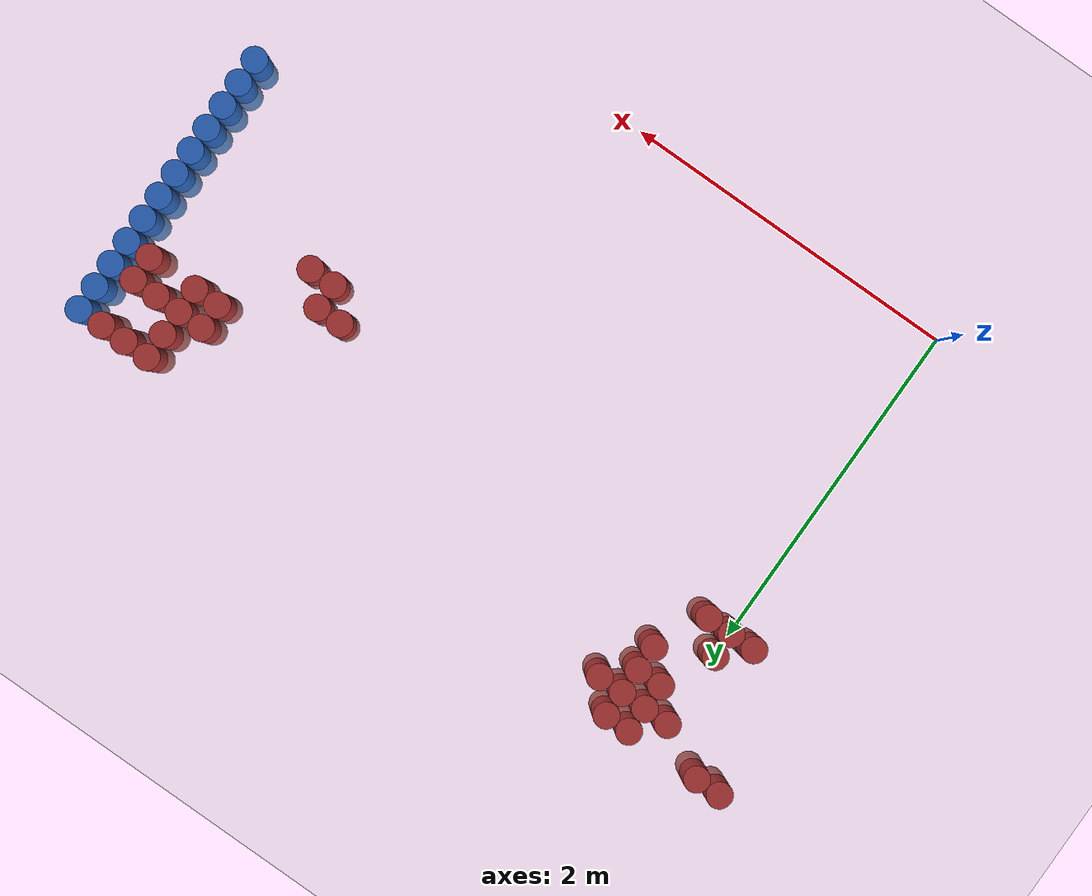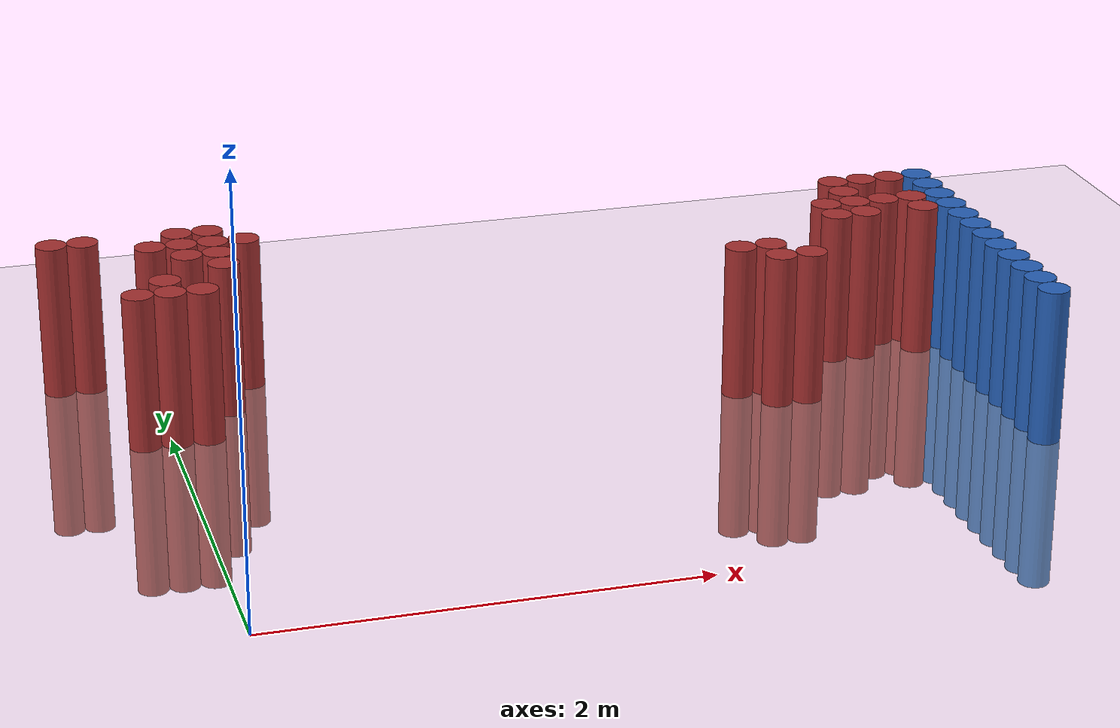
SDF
<sdf version="1.6">
 <world name="default">
  <model name="ground_plane">
   <static>1</static>
   <link name="link">
    <collision name="collision">
     <geometry><plane><normal>0 0 1</normal><size>100 100</size></plane></geometry>
     <surface><friction><ode><mu>100</mu><mu2>50</mu2></ode></friction></surface>
    </collision>
    <visual name="visual">
     <cast_shadows>0</cast_shadows>
     <geometry><plane><normal>0 0 1</normal><size>100 100</size></plane></geometry>
     <material>
      <script><uri>file://media/materials/scripts/gazebo.material</uri><name>Gazebo/Grey</name></script>
     </material>
    </visual>
   </link>
  </model>
  <model name="unit_cylinder_128">
   <static>1</static>
   <pose>3.925000 1.075000 0.000000 0.000000 0.000000 0.000000</pose>
   <link name="link">
    <inertial>
     <mass>1</mass>
     <inertia><ixx>0.145833</ixx><ixy>0</ixy><ixz>0</ixz><iyy>0.145833</iyy><iyz>0</iyz><izz>0.125</izz></inertia>
    </inertial>
    <collision name="collision">
     <geometry><cylinder><radius>0.075000</radius><length>1.5</length></cylinder></geometry>
    </collision>
    <visual name="visual">
     <geometry><cylinder><radius>0.075000</radius><length>1.5</length></cylinder></geometry>
     <material>
      <ambient>0.152000 0.379000 0.720000 1</ambient>
      <diffuse>0.152000 0.379000 0.720000 1</diffuse>
     </material>
     <material>
      <script><name>Gazebo/Grey</name><uri>file://media/materials/scripts/gazebo.material</uri></script>
     </material>
    </visual>
   </link>
  </model>
  <model name="unit_cylinder_130">
   <static>1</static>
   <pose>3.925000 1.225000 0.000000 0.000000 0.000000 0.000000</pose>
   <link name="link">
    <inertial>
     <mass>1</mass>
     <inertia><ixx>0.145833</ixx><ixy>0</ixy><ixz>0</ixz><iyy>0.145833</iyy><iyz>0</iyz><izz>0.125</izz></inertia>
    </inertial>
    <collision name="collision">
     <geometry><cylinder><radius>0.075000</radius><length>1.5</length></cylinder></geometry>
    </collision>
    <visual name="visual">
     <geometry><cylinder><radius>0.075000</radius><length>1.5</length></cylinder></geometry>
     <material>
      <ambient>0.152000 0.379000 0.720000 1</ambient>
      <diffuse>0.152000 0.379000 0.720000 1</diffuse>
     </material>
     <material>
      <script><name>Gazebo/Grey</name><uri>file://media/materials/scripts/gazebo.material</uri></script>
     </material>
    </visual>
   </link>
  </model>
  <model name="unit_cylinder_132">
   <static>1</static>
   <pose>3.925000 1.375000 0.000000 0.000000 0.000000 0.000000</pose>
   <link name="link">
    <inertial>
     <mass>1</mass>
     <inertia><ixx>0.145833</ixx><ixy>0</ixy><ixz>0</ixz><iyy>0.145833</iyy><iyz>0</iyz><izz>0.125</izz></inertia>
    </inertial>
    <collision name="collision">
     <geometry><cylinder><radius>0.075000</radius><length>1.5</length></cylinder></geometry>
    </collision>
    <visual name="visual">
     <geometry><cylinder><radius>0.075000</radius><length>1.5</length></cylinder></geometry>
     <material>
      <ambient>0.152000 0.379000 0.720000 1</ambient>
      <diffuse>0.152000 0.379000 0.720000 1</diffuse>
     </material>
     <material>
      <script><name>Gazebo/Grey</name><uri>file://media/materials/scripts/gazebo.material</uri></script>
     </material>
    </visual>
   </link>
  </model>
  <model name="unit_cylinder_134">
   <static>1</static>
   <pose>3.925000 1.525000 0.000000 0.000000 0.000000 0.000000</pose>
   <link name="link">
    <inertial>
     <mass>1</mass>
     <inertia><ixx>0.145833</ixx><ixy>0</ixy><ixz>0</ixz><iyy>0.145833</iyy><iyz>0</iyz><izz>0.125</izz></inertia>
    </inertial>
    <collision name="collision">
     <geometry><cylinder><radius>0.075000</radius><length>1.5</length></cylinder></geometry>
    </collision>
    <visual name="visual">
     <geometry><cylinder><radius>0.075000</radius><length>1.5</length></cylinder></geometry>
     <material>
      <ambient>0.152000 0.379000 0.720000 1</ambient>
      <diffuse>0.152000 0.379000 0.720000 1</diffuse>
     </material>
     <material>
      <script><name>Gazebo/Grey</name><uri>file://media/materials/scripts/gazebo.material</uri></script>
     </material>
    </visual>
   </link>
  </model>
  <model name="unit_cylinder_136">
   <static>1</static>
   <pose>3.925000 1.675000 0.000000 0.000000 0.000000 0.000000</pose>
   <link name="link">
    <inertial>
     <mass>1</mass>
     <inertia><ixx>0.145833</ixx><ixy>0</ixy><ixz>0</ixz><iyy>0.145833</iyy><iyz>0</iyz><izz>0.125</izz></inertia>
    </inertial>
    <collision name="collision">
     <geometry><cylinder><radius>0.075000</radius><length>1.5</length></cylinder></geometry>
    </collision>
    <visual name="visual">
     <geometry><cylinder><radius>0.075000</radius><length>1.5</length></cylinder></geometry>
     <material>
      <ambient>0.152000 0.379000 0.720000 1</ambient>
      <diffuse>0.152000 0.379000 0.720000 1</diffuse>
     </material>
     <material>
      <script><name>Gazebo/Grey</name><uri>file://media/materials/scripts/gazebo.material</uri></script>
     </material>
    </visual>
   </link>
  </model>
  <model name="unit_cylinder_138">
   <static>1</static>
   <pose>3.925000 1.825000 0.000000 0.000000 0.000000 0.000000</pose>
   <link name="link">
    <inertial>
     <mass>1</mass>
     <inertia><ixx>0.145833</ixx><ixy>0</ixy><ixz>0</ixz><iyy>0.145833</iyy><iyz>0</iyz><izz>0.125</izz></inertia>
    </inertial>
    <collision name="collision">
     <geometry><cylinder><radius>0.075000</radius><length>1.5</length></cylinder></geometry>
    </collision>
    <visual name="visual">
     <geometry><cylinder><radius>0.075000</radius><length>1.5</length></cylinder></geometry>
     <material>
      <ambient>0.152000 0.379000 0.720000 1</ambient>
      <diffuse>0.152000 0.379000 0.720000 1</diffuse>
     </material>
     <material>
      <script><name>Gazebo/Grey</name><uri>file://media/materials/scripts/gazebo.material</uri></script>
     </material>
    </visual>
   </link>
  </model>
  <model name="unit_cylinder_140">
   <static>1</static>
   <pose>3.925000 1.975000 0.000000 0.000000 0.000000 0.000000</pose>
   <link name="link">
    <inertial>
     <mass>1</mass>
     <inertia><ixx>0.145833</ixx><ixy>0</ixy><ixz>0</ixz><iyy>0.145833</iyy><iyz>0</iyz><izz>0.125</izz></inertia>
    </inertial>
    <collision name="collision">
     <geometry><cylinder><radius>0.075000</radius><length>1.5</length></cylinder></geometry>
    </collision>
    <visual name="visual">
     <geometry><cylinder><radius>0.075000</radius><length>1.5</length></cylinder></geometry>
     <material>
      <ambient>0.152000 0.379000 0.720000 1</ambient>
      <diffuse>0.152000 0.379000 0.720000 1</diffuse>
     </material>
     <material>
      <script><name>Gazebo/Grey</name><uri>file://media/materials/scripts/gazebo.material</uri></script>
     </material>
    </visual>
   </link>
  </model>
  <model name="unit_cylinder_142">
   <static>1</static>
   <pose>3.925000 2.125000 0.000000 0.000000 0.000000 0.000000</pose>
   <link name="link">
    <inertial>
     <mass>1</mass>
     <inertia><ixx>0.145833</ixx><ixy>0</ixy><ixz>0</ixz><iyy>0.145833</iyy><iyz>0</iyz><izz>0.125</izz></inertia>
    </inertial>
    <collision name="collision">
     <geometry><cylinder><radius>0.075000</radius><length>1.5</length></cylinder></geometry>
    </collision>
    <visual name="visual">
     <geometry><cylinder><radius>0.075000</radius><length>1.5</length></cylinder></geometry>
     <material>
      <ambient>0.152000 0.379000 0.720000 1</ambient>
      <diffuse>0.152000 0.379000 0.720000 1</diffuse>
     </material>
     <material>
      <script><name>Gazebo/Grey</name><uri>file://media/materials/scripts/gazebo.material</uri></script>
     </material>
    </visual>
   </link>
  </model>
  <model name="unit_cylinder_144">
   <static>1</static>
   <pose>3.925000 2.275000 0.000000 0.000000 0.000000 0.000000</pose>
   <link name="link">
    <inertial>
     <mass>1</mass>
     <inertia><ixx>0.145833</ixx><ixy>0</ixy><ixz>0</ixz><iyy>0.145833</iyy><iyz>0</iyz><izz>0.125</izz></inertia>
    </inertial>
    <collision name="collision">
     <geometry><cylinder><radius>0.075000</radius><length>1.5</length></cylinder></geometry>
    </collision>
    <visual name="visual">
     <geometry><cylinder><radius>0.075000</radius><length>1.5</length></cylinder></geometry>
     <material>
      <ambient>0.152000 0.379000 0.720000 1</ambient>
      <diffuse>0.152000 0.379000 0.720000 1</diffuse>
     </material>
     <material>
      <script><name>Gazebo/Grey</name><uri>file://media/materials/scripts/gazebo.material</uri></script>
     </material>
    </visual>
   </link>
  </model>
  <model name="unit_cylinder_146">
   <static>1</static>
   <pose>3.925000 2.425000 0.000000 0.000000 0.000000 0.000000</pose>
   <link name="link">
    <inertial>
     <mass>1</mass>
     <inertia><ixx>0.145833</ixx><ixy>0</ixy><ixz>0</ixz><iyy>0.145833</iyy><iyz>0</iyz><izz>0.125</izz></inertia>
    </inertial>
    <collision name="collision">
     <geometry><cylinder><radius>0.075000</radius><length>1.5</length></cylinder></geometry>
    </collision>
    <visual name="visual">
     <geometry><cylinder><radius>0.075000</radius><length>1.5</length></cylinder></geometry>
     <material>
      <ambient>0.152000 0.379000 0.720000 1</ambient>
      <diffuse>0.152000 0.379000 0.720000 1</diffuse>
     </material>
     <material>
      <script><name>Gazebo/Grey</name><uri>file://media/materials/scripts/gazebo.material</uri></script>
     </material>
    </visual>
   </link>
  </model>
  <model name="unit_cylinder_148">
   <static>1</static>
   <pose>3.925000 2.575000 0.000000 0.000000 0.000000 0.000000</pose>
   <link name="link">
    <inertial>
     <mass>1</mass>
     <inertia><ixx>0.145833</ixx><ixy>0</ixy><ixz>0</ixz><iyy>0.145833</iyy><iyz>0</iyz><izz>0.125</izz></inertia>
    </inertial>
    <collision name="collision">
     <geometry><cylinder><radius>0.075000</radius><length>1.5</length></cylinder></geometry>
    </collision>
    <visual name="visual">
     <geometry><cylinder><radius>0.075000</radius><length>1.5</length></cylinder></geometry>
     <material>
      <ambient>0.152000 0.379000 0.720000 1</ambient>
      <diffuse>0.152000 0.379000 0.720000 1</diffuse>
     </material>
     <material>
      <script><name>Gazebo/Grey</name><uri>file://media/materials/scripts/gazebo.material</uri></script>
     </material>
    </visual>
   </link>
  </model>
  <model name="unit_cylinder_330">
   <static>1</static>
   <pose>-0.425000 2.725000 0.000000 0.000000 0.000000 0.000000</pose>
   <link name="link">
    <inertial>
     <mass>1</mass>
     <inertia><ixx>0.145833</ixx><ixy>0</ixy><ixz>0</ixz><iyy>0.145833</iyy><iyz>0</iyz><izz>0.125</izz></inertia>
    </inertial>
    <collision name="collision">
     <geometry><cylinder><radius>0.075000</radius><length>1.5</length></cylinder></geometry>
    </collision>
    <visual name="visual">
     <geometry><cylinder><radius>0.075000</radius><length>1.5</length></cylinder></geometry>
     <material>
      <ambient>0.648000 0.192000 0.192000 1</ambient>
      <diffuse>0.648000 0.192000 0.192000 1</diffuse>
     </material>
     <material>
      <script><name>Gazebo/Grey</name><uri>file://media/materials/scripts/gazebo.material</uri></script>
     </material>
    </visual>
   </link>
  </model>
  <model name="unit_cylinder_333">
   <static>1</static>
   <pose>-0.275000 2.725000 0.000000 0.000000 0.000000 0.000000</pose>
   <link name="link">
    <inertial>
     <mass>1</mass>
     <inertia><ixx>0.145833</ixx><ixy>0</ixy><ixz>0</ixz><iyy>0.145833</iyy><iyz>0</iyz><izz>0.125</izz></inertia>
    </inertial>
    <collision name="collision">
     <geometry><cylinder><radius>0.075000</radius><length>1.5</length></cylinder></geometry>
    </collision>
    <visual name="visual">
     <geometry><cylinder><radius>0.075000</radius><length>1.5</length></cylinder></geometry>
     <material>
      <ambient>0.648000 0.192000 0.192000 1</ambient>
      <diffuse>0.648000 0.192000 0.192000 1</diffuse>
     </material>
     <material>
      <script><name>Gazebo/Grey</name><uri>file://media/materials/scripts/gazebo.material</uri></script>
     </material>
    </visual>
   </link>
  </model>
  <model name="unit_cylinder_337">
   <static>1</static>
   <pose>-0.125000 1.975000 0.000000 0.000000 0.000000 0.000000</pose>
   <link name="link">
    <inertial>
     <mass>1</mass>
     <inertia><ixx>0.145833</ixx><ixy>0</ixy><ixz>0</ixz><iyy>0.145833</iyy><iyz>0</iyz><izz>0.125</izz></inertia>
    </inertial>
    <collision name="collision">
     <geometry><cylinder><radius>0.075000</radius><length>1.5</length></cylinder></geometry>
    </collision>
    <visual name="visual">
     <geometry><cylinder><radius>0.075000</radius><length>1.5</length></cylinder></geometry>
     <material>
      <ambient>0.648000 0.192000 0.192000 1</ambient>
      <diffuse>0.648000 0.192000 0.192000 1</diffuse>
     </material>
     <material>
      <script><name>Gazebo/Grey</name><uri>file://media/materials/scripts/gazebo.material</uri></script>
     </material>
    </visual>
   </link>
  </model>
  <model name="unit_cylinder_342">
   <static>1</static>
   <pose>0.025000 1.975000 0.000000 0.000000 0.000000 0.000000</pose>
   <link name="link">
    <inertial>
     <mass>1</mass>
     <inertia><ixx>0.145833</ixx><ixy>0</ixy><ixz>0</ixz><iyy>0.145833</iyy><iyz>0</iyz><izz>0.125</izz></inertia>
    </inertial>
    <collision name="collision">
     <geometry><cylinder><radius>0.075000</radius><length>1.5</length></cylinder></geometry>
    </collision>
    <visual name="visual">
     <geometry><cylinder><radius>0.075000</radius><length>1.5</length></cylinder></geometry>
     <material>
      <ambient>0.648000 0.192000 0.192000 1</ambient>
      <diffuse>0.648000 0.192000 0.192000 1</diffuse>
     </material>
     <material>
      <script><name>Gazebo/Grey</name><uri>file://media/materials/scripts/gazebo.material</uri></script>
     </material>
    </visual>
   </link>
  </model>
  <model name="unit_cylinder_343">
   <static>1</static>
   <pose>0.025000 2.125000 0.000000 0.000000 0.000000 0.000000</pose>
   <link name="link">
    <inertial>
     <mass>1</mass>
     <inertia><ixx>0.145833</ixx><ixy>0</ixy><ixz>0</ixz><iyy>0.145833</iyy><iyz>0</iyz><izz>0.125</izz></inertia>
    </inertial>
    <collision name="collision">
     <geometry><cylinder><radius>0.075000</radius><length>1.5</length></cylinder></geometry>
    </collision>
    <visual name="visual">
     <geometry><cylinder><radius>0.075000</radius><length>1.5</length></cylinder></geometry>
     <material>
      <ambient>0.648000 0.192000 0.192000 1</ambient>
      <diffuse>0.648000 0.192000 0.192000 1</diffuse>
     </material>
     <material>
      <script><name>Gazebo/Grey</name><uri>file://media/materials/scripts/gazebo.material</uri></script>
     </material>
    </visual>
   </link>
  </model>
  <model name="unit_cylinder_344">
   <static>1</static>
   <pose>0.025000 2.575000 0.000000 0.000000 0.000000 0.000000</pose>
   <link name="link">
    <inertial>
     <mass>1</mass>
     <inertia><ixx>0.145833</ixx><ixy>0</ixy><ixz>0</ixz><iyy>0.145833</iyy><iyz>0</iyz><izz>0.125</izz></inertia>
    </inertial>
    <collision name="collision">
     <geometry><cylinder><radius>0.075000</radius><length>1.5</length></cylinder></geometry>
    </collision>
    <visual name="visual">
     <geometry><cylinder><radius>0.075000</radius><length>1.5</length></cylinder></geometry>
     <material>
      <ambient>0.648000 0.192000 0.192000 1</ambient>
      <diffuse>0.648000 0.192000 0.192000 1</diffuse>
     </material>
     <material>
      <script><name>Gazebo/Grey</name><uri>file://media/materials/scripts/gazebo.material</uri></script>
     </material>
    </visual>
   </link>
  </model>
  <model name="unit_cylinder_348">
   <static>1</static>
   <pose>0.175000 1.975000 0.000000 0.000000 0.000000 0.000000</pose>
   <link name="link">
    <inertial>
     <mass>1</mass>
     <inertia><ixx>0.145833</ixx><ixy>0</ixy><ixz>0</ixz><iyy>0.145833</iyy><iyz>0</iyz><izz>0.125</izz></inertia>
    </inertial>
    <collision name="collision">
     <geometry><cylinder><radius>0.075000</radius><length>1.5</length></cylinder></geometry>
    </collision>
    <visual name="visual">
     <geometry><cylinder><radius>0.075000</radius><length>1.5</length></cylinder></geometry>
     <material>
      <ambient>0.648000 0.192000 0.192000 1</ambient>
      <diffuse>0.648000 0.192000 0.192000 1</diffuse>
     </material>
     <material>
      <script><name>Gazebo/Grey</name><uri>file://media/materials/scripts/gazebo.material</uri></script>
     </material>
    </visual>
   </link>
  </model>
  <model name="unit_cylinder_349">
   <static>1</static>
   <pose>0.175000 2.425000 0.000000 0.000000 0.000000 0.000000</pose>
   <link name="link">
    <inertial>
     <mass>1</mass>
     <inertia><ixx>0.145833</ixx><ixy>0</ixy><ixz>0</ixz><iyy>0.145833</iyy><iyz>0</iyz><izz>0.125</izz></inertia>
    </inertial>
    <collision name="collision">
     <geometry><cylinder><radius>0.075000</radius><length>1.5</length></cylinder></geometry>
    </collision>
    <visual name="visual">
     <geometry><cylinder><radius>0.075000</radius><length>1.5</length></cylinder></geometry>
     <material>
      <ambient>0.648000 0.192000 0.192000 1</ambient>
      <diffuse>0.648000 0.192000 0.192000 1</diffuse>
     </material>
     <material>
      <script><name>Gazebo/Grey</name><uri>file://media/materials/scripts/gazebo.material</uri></script>
     </material>
    </visual>
   </link>
  </model>
  <model name="unit_cylinder_350">
   <static>1</static>
   <pose>0.175000 2.575000 0.000000 0.000000 0.000000 0.000000</pose>
   <link name="link">
    <inertial>
     <mass>1</mass>
     <inertia><ixx>0.145833</ixx><ixy>0</ixy><ixz>0</ixz><iyy>0.145833</iyy><iyz>0</iyz><izz>0.125</izz></inertia>
    </inertial>
    <collision name="collision">
     <geometry><cylinder><radius>0.075000</radius><length>1.5</length></cylinder></geometry>
    </collision>
    <visual name="visual">
     <geometry><cylinder><radius>0.075000</radius><length>1.5</length></cylinder></geometry>
     <material>
      <ambient>0.648000 0.192000 0.192000 1</ambient>
      <diffuse>0.648000 0.192000 0.192000 1</diffuse>
     </material>
     <material>
      <script><name>Gazebo/Grey</name><uri>file://media/materials/scripts/gazebo.material</uri></script>
     </material>
    </visual>
   </link>
  </model>
  <model name="unit_cylinder_351">
   <static>1</static>
   <pose>0.175000 2.725000 0.000000 0.000000 0.000000 0.000000</pose>
   <link name="link">
    <inertial>
     <mass>1</mass>
     <inertia><ixx>0.145833</ixx><ixy>0</ixy><ixz>0</ixz><iyy>0.145833</iyy><iyz>0</iyz><izz>0.125</izz></inertia>
    </inertial>
    <collision name="collision">
     <geometry><cylinder><radius>0.075000</radius><length>1.5</length></cylinder></geometry>
    </collision>
    <visual name="visual">
     <geometry><cylinder><radius>0.075000</radius><length>1.5</length></cylinder></geometry>
     <material>
      <ambient>0.648000 0.192000 0.192000 1</ambient>
      <diffuse>0.648000 0.192000 0.192000 1</diffuse>
     </material>
     <material>
      <script><name>Gazebo/Grey</name><uri>file://media/materials/scripts/gazebo.material</uri></script>
     </material>
    </visual>
   </link>
  </model>
  <model name="unit_cylinder_355">
   <static>1</static>
   <pose>0.325000 2.275000 0.000000 0.000000 0.000000 0.000000</pose>
   <link name="link">
    <inertial>
     <mass>1</mass>
     <inertia><ixx>0.145833</ixx><ixy>0</ixy><ixz>0</ixz><iyy>0.145833</iyy><iyz>0</iyz><izz>0.125</izz></inertia>
    </inertial>
    <collision name="collision">
     <geometry><cylinder><radius>0.075000</radius><length>1.5</length></cylinder></geometry>
    </collision>
    <visual name="visual">
     <geometry><cylinder><radius>0.075000</radius><length>1.5</length></cylinder></geometry>
     <material>
      <ambient>0.648000 0.192000 0.192000 1</ambient>
      <diffuse>0.648000 0.192000 0.192000 1</diffuse>
     </material>
     <material>
      <script><name>Gazebo/Grey</name><uri>file://media/materials/scripts/gazebo.material</uri></script>
     </material>
    </visual>
   </link>
  </model>
  <model name="unit_cylinder_356">
   <static>1</static>
   <pose>0.325000 2.425000 0.000000 0.000000 0.000000 0.000000</pose>
   <link name="link">
    <inertial>
     <mass>1</mass>
     <inertia><ixx>0.145833</ixx><ixy>0</ixy><ixz>0</ixz><iyy>0.145833</iyy><iyz>0</iyz><izz>0.125</izz></inertia>
    </inertial>
    <collision name="collision">
     <geometry><cylinder><radius>0.075000</radius><length>1.5</length></cylinder></geometry>
    </collision>
    <visual name="visual">
     <geometry><cylinder><radius>0.075000</radius><length>1.5</length></cylinder></geometry>
     <material>
      <ambient>0.648000 0.192000 0.192000 1</ambient>
      <diffuse>0.648000 0.192000 0.192000 1</diffuse>
     </material>
     <material>
      <script><name>Gazebo/Grey</name><uri>file://media/materials/scripts/gazebo.material</uri></script>
     </material>
    </visual>
   </link>
  </model>
  <model name="unit_cylinder_357">
   <static>1</static>
   <pose>0.325000 2.575000 0.000000 0.000000 0.000000 0.000000</pose>
   <link name="link">
    <inertial>
     <mass>1</mass>
     <inertia><ixx>0.145833</ixx><ixy>0</ixy><ixz>0</ixz><iyy>0.145833</iyy><iyz>0</iyz><izz>0.125</izz></inertia>
    </inertial>
    <collision name="collision">
     <geometry><cylinder><radius>0.075000</radius><length>1.5</length></cylinder></geometry>
    </collision>
    <visual name="visual">
     <geometry><cylinder><radius>0.075000</radius><length>1.5</length></cylinder></geometry>
     <material>
      <ambient>0.648000 0.192000 0.192000 1</ambient>
      <diffuse>0.648000 0.192000 0.192000 1</diffuse>
     </material>
     <material>
      <script><name>Gazebo/Grey</name><uri>file://media/materials/scripts/gazebo.material</uri></script>
     </material>
    </visual>
   </link>
  </model>
  <model name="unit_cylinder_358">
   <static>1</static>
   <pose>0.325000 2.725000 0.000000 0.000000 0.000000 0.000000</pose>
   <link name="link">
    <inertial>
     <mass>1</mass>
     <inertia><ixx>0.145833</ixx><ixy>0</ixy><ixz>0</ixz><iyy>0.145833</iyy><iyz>0</iyz><izz>0.125</izz></inertia>
    </inertial>
    <collision name="collision">
     <geometry><cylinder><radius>0.075000</radius><length>1.5</length></cylinder></geometry>
    </collision>
    <visual name="visual">
     <geometry><cylinder><radius>0.075000</radius><length>1.5</length></cylinder></geometry>
     <material>
      <ambient>0.648000 0.192000 0.192000 1</ambient>
      <diffuse>0.648000 0.192000 0.192000 1</diffuse>
     </material>
     <material>
      <script><name>Gazebo/Grey</name><uri>file://media/materials/scripts/gazebo.material</uri></script>
     </material>
    </visual>
   </link>
  </model>
  <model name="unit_cylinder_362">
   <static>1</static>
   <pose>0.475000 2.575000 0.000000 0.000000 0.000000 0.000000</pose>
   <link name="link">
    <inertial>
     <mass>1</mass>
     <inertia><ixx>0.145833</ixx><ixy>0</ixy><ixz>0</ixz><iyy>0.145833</iyy><iyz>0</iyz><izz>0.125</izz></inertia>
    </inertial>
    <collision name="collision">
     <geometry><cylinder><radius>0.075000</radius><length>1.5</length></cylinder></geometry>
    </collision>
    <visual name="visual">
     <geometry><cylinder><radius>0.075000</radius><length>1.5</length></cylinder></geometry>
     <material>
      <ambient>0.648000 0.192000 0.192000 1</ambient>
      <diffuse>0.648000 0.192000 0.192000 1</diffuse>
     </material>
     <material>
      <script><name>Gazebo/Grey</name><uri>file://media/materials/scripts/gazebo.material</uri></script>
     </material>
    </visual>
   </link>
  </model>
  <model name="unit_cylinder_413">
   <static>1</static>
   <pose>2.725000 1.825000 0.000000 0.000000 0.000000 0.000000</pose>
   <link name="link">
    <inertial>
     <mass>1</mass>
     <inertia><ixx>0.145833</ixx><ixy>0</ixy><ixz>0</ixz><iyy>0.145833</iyy><iyz>0</iyz><izz>0.125</izz></inertia>
    </inertial>
    <collision name="collision">
     <geometry><cylinder><radius>0.075000</radius><length>1.5</length></cylinder></geometry>
    </collision>
    <visual name="visual">
     <geometry><cylinder><radius>0.075000</radius><length>1.5</length></cylinder></geometry>
     <material>
      <ambient>0.648000 0.192000 0.192000 1</ambient>
      <diffuse>0.648000 0.192000 0.192000 1</diffuse>
     </material>
     <material>
      <script><name>Gazebo/Grey</name><uri>file://media/materials/scripts/gazebo.material</uri></script>
     </material>
    </visual>
   </link>
  </model>
  <model name="unit_cylinder_414">
   <static>1</static>
   <pose>2.875000 1.675000 0.000000 0.000000 0.000000 0.000000</pose>
   <link name="link">
    <inertial>
     <mass>1</mass>
     <inertia><ixx>0.145833</ixx><ixy>0</ixy><ixz>0</ixz><iyy>0.145833</iyy><iyz>0</iyz><izz>0.125</izz></inertia>
    </inertial>
    <collision name="collision">
     <geometry><cylinder><radius>0.075000</radius><length>1.5</length></cylinder></geometry>
    </collision>
    <visual name="visual">
     <geometry><cylinder><radius>0.075000</radius><length>1.5</length></cylinder></geometry>
     <material>
      <ambient>0.648000 0.192000 0.192000 1</ambient>
      <diffuse>0.648000 0.192000 0.192000 1</diffuse>
     </material>
     <material>
      <script><name>Gazebo/Grey</name><uri>file://media/materials/scripts/gazebo.material</uri></script>
     </material>
    </visual>
   </link>
  </model>
  <model name="unit_cylinder_415">
   <static>1</static>
   <pose>2.875000 1.825000 0.000000 0.000000 0.000000 0.000000</pose>
   <link name="link">
    <inertial>
     <mass>1</mass>
     <inertia><ixx>0.145833</ixx><ixy>0</ixy><ixz>0</ixz><iyy>0.145833</iyy><iyz>0</iyz><izz>0.125</izz></inertia>
    </inertial>
    <collision name="collision">
     <geometry><cylinder><radius>0.075000</radius><length>1.5</length></cylinder></geometry>
    </collision>
    <visual name="visual">
     <geometry><cylinder><radius>0.075000</radius><length>1.5</length></cylinder></geometry>
     <material>
      <ambient>0.648000 0.192000 0.192000 1</ambient>
      <diffuse>0.648000 0.192000 0.192000 1</diffuse>
     </material>
     <material>
      <script><name>Gazebo/Grey</name><uri>file://media/materials/scripts/gazebo.material</uri></script>
     </material>
    </visual>
   </link>
  </model>
  <model name="unit_cylinder_416">
   <static>1</static>
   <pose>3.025000 1.675000 0.000000 0.000000 0.000000 0.000000</pose>
   <link name="link">
    <inertial>
     <mass>1</mass>
     <inertia><ixx>0.145833</ixx><ixy>0</ixy><ixz>0</ixz><iyy>0.145833</iyy><iyz>0</iyz><izz>0.125</izz></inertia>
    </inertial>
    <collision name="collision">
     <geometry><cylinder><radius>0.075000</radius><length>1.5</length></cylinder></geometry>
    </collision>
    <visual name="visual">
     <geometry><cylinder><radius>0.075000</radius><length>1.5</length></cylinder></geometry>
     <material>
      <ambient>0.648000 0.192000 0.192000 1</ambient>
      <diffuse>0.648000 0.192000 0.192000 1</diffuse>
     </material>
     <material>
      <script><name>Gazebo/Grey</name><uri>file://media/materials/scripts/gazebo.material</uri></script>
     </material>
    </visual>
   </link>
  </model>
  <model name="unit_cylinder_427">
   <static>1</static>
   <pose>3.325000 2.125000 0.000000 0.000000 0.000000 0.000000</pose>
   <link name="link">
    <inertial>
     <mass>1</mass>
     <inertia><ixx>0.145833</ixx><ixy>0</ixy><ixz>0</ixz><iyy>0.145833</iyy><iyz>0</iyz><izz>0.125</izz></inertia>
    </inertial>
    <collision name="collision">
     <geometry><cylinder><radius>0.075000</radius><length>1.5</length></cylinder></geometry>
    </collision>
    <visual name="visual">
     <geometry><cylinder><radius>0.075000</radius><length>1.5</length></cylinder></geometry>
     <material>
      <ambient>0.648000 0.192000 0.192000 1</ambient>
      <diffuse>0.648000 0.192000 0.192000 1</diffuse>
     </material>
     <material>
      <script><name>Gazebo/Grey</name><uri>file://media/materials/scripts/gazebo.material</uri></script>
     </material>
    </visual>
   </link>
  </model>
  <model name="unit_cylinder_428">
   <static>1</static>
   <pose>3.325000 2.275000 0.000000 0.000000 0.000000 0.000000</pose>
   <link name="link">
    <inertial>
     <mass>1</mass>
     <inertia><ixx>0.145833</ixx><ixy>0</ixy><ixz>0</ixz><iyy>0.145833</iyy><iyz>0</iyz><izz>0.125</izz></inertia>
    </inertial>
    <collision name="collision">
     <geometry><cylinder><radius>0.075000</radius><length>1.5</length></cylinder></geometry>
    </collision>
    <visual name="visual">
     <geometry><cylinder><radius>0.075000</radius><length>1.5</length></cylinder></geometry>
     <material>
      <ambient>0.648000 0.192000 0.192000 1</ambient>
      <diffuse>0.648000 0.192000 0.192000 1</diffuse>
     </material>
     <material>
      <script><name>Gazebo/Grey</name><uri>file://media/materials/scripts/gazebo.material</uri></script>
     </material>
    </visual>
   </link>
  </model>
  <model name="unit_cylinder_437">
   <static>1</static>
   <pose>3.475000 2.125000 0.000000 0.000000 0.000000 0.000000</pose>
   <link name="link">
    <inertial>
     <mass>1</mass>
     <inertia><ixx>0.145833</ixx><ixy>0</ixy><ixz>0</ixz><iyy>0.145833</iyy><iyz>0</iyz><izz>0.125</izz></inertia>
    </inertial>
    <collision name="collision">
     <geometry><cylinder><radius>0.075000</radius><length>1.5</length></cylinder></geometry>
    </collision>
    <visual name="visual">
     <geometry><cylinder><radius>0.075000</radius><length>1.5</length></cylinder></geometry>
     <material>
      <ambient>0.648000 0.192000 0.192000 1</ambient>
      <diffuse>0.648000 0.192000 0.192000 1</diffuse>
     </material>
     <material>
      <script><name>Gazebo/Grey</name><uri>file://media/materials/scripts/gazebo.material</uri></script>
     </material>
    </visual>
   </link>
  </model>
  <model name="unit_cylinder_438">
   <static>1</static>
   <pose>3.475000 2.275000 0.000000 0.000000 0.000000 0.000000</pose>
   <link name="link">
    <inertial>
     <mass>1</mass>
     <inertia><ixx>0.145833</ixx><ixy>0</ixy><ixz>0</ixz><iyy>0.145833</iyy><iyz>0</iyz><izz>0.125</izz></inertia>
    </inertial>
    <collision name="collision">
     <geometry><cylinder><radius>0.075000</radius><length>1.5</length></cylinder></geometry>
    </collision>
    <visual name="visual">
     <geometry><cylinder><radius>0.075000</radius><length>1.5</length></cylinder></geometry>
     <material>
      <ambient>0.648000 0.192000 0.192000 1</ambient>
      <diffuse>0.648000 0.192000 0.192000 1</diffuse>
     </material>
     <material>
      <script><name>Gazebo/Grey</name><uri>file://media/materials/scripts/gazebo.material</uri></script>
     </material>
    </visual>
   </link>
  </model>
  <model name="unit_cylinder_439">
   <static>1</static>
   <pose>3.475000 2.425000 0.000000 0.000000 0.000000 0.000000</pose>
   <link name="link">
    <inertial>
     <mass>1</mass>
     <inertia><ixx>0.145833</ixx><ixy>0</ixy><ixz>0</ixz><iyy>0.145833</iyy><iyz>0</iyz><izz>0.125</izz></inertia>
    </inertial>
    <collision name="collision">
     <geometry><cylinder><radius>0.075000</radius><length>1.5</length></cylinder></geometry>
    </collision>
    <visual name="visual">
     <geometry><cylinder><radius>0.075000</radius><length>1.5</length></cylinder></geometry>
     <material>
      <ambient>0.648000 0.192000 0.192000 1</ambient>
      <diffuse>0.648000 0.192000 0.192000 1</diffuse>
     </material>
     <material>
      <script><name>Gazebo/Grey</name><uri>file://media/materials/scripts/gazebo.material</uri></script>
     </material>
    </visual>
   </link>
  </model>
  <model name="unit_cylinder_440">
   <static>1</static>
   <pose>3.475000 2.575000 0.000000 0.000000 0.000000 0.000000</pose>
   <link name="link">
    <inertial>
     <mass>1</mass>
     <inertia><ixx>0.145833</ixx><ixy>0</ixy><ixz>0</ixz><iyy>0.145833</iyy><iyz>0</iyz><izz>0.125</izz></inertia>
    </inertial>
    <collision name="collision">
     <geometry><cylinder><radius>0.075000</radius><length>1.5</length></cylinder></geometry>
    </collision>
    <visual name="visual">
     <geometry><cylinder><radius>0.075000</radius><length>1.5</length></cylinder></geometry>
     <material>
      <ambient>0.648000 0.192000 0.192000 1</ambient>
      <diffuse>0.648000 0.192000 0.192000 1</diffuse>
     </material>
     <material>
      <script><name>Gazebo/Grey</name><uri>file://media/materials/scripts/gazebo.material</uri></script>
     </material>
    </visual>
   </link>
  </model>
  <model name="unit_cylinder_448">
   <static>1</static>
   <pose>3.625000 2.275000 0.000000 0.000000 0.000000 0.000000</pose>
   <link name="link">
    <inertial>
     <mass>1</mass>
     <inertia><ixx>0.145833</ixx><ixy>0</ixy><ixz>0</ixz><iyy>0.145833</iyy><iyz>0</iyz><izz>0.125</izz></inertia>
    </inertial>
    <collision name="collision">
     <geometry><cylinder><radius>0.075000</radius><length>1.5</length></cylinder></geometry>
    </collision>
    <visual name="visual">
     <geometry><cylinder><radius>0.075000</radius><length>1.5</length></cylinder></geometry>
     <material>
      <ambient>0.648000 0.192000 0.192000 1</ambient>
      <diffuse>0.648000 0.192000 0.192000 1</diffuse>
     </material>
     <material>
      <script><name>Gazebo/Grey</name><uri>file://media/materials/scripts/gazebo.material</uri></script>
     </material>
    </visual>
   </link>
  </model>
  <model name="unit_cylinder_449">
   <static>1</static>
   <pose>3.625000 2.575000 0.000000 0.000000 0.000000 0.000000</pose>
   <link name="link">
    <inertial>
     <mass>1</mass>
     <inertia><ixx>0.145833</ixx><ixy>0</ixy><ixz>0</ixz><iyy>0.145833</iyy><iyz>0</iyz><izz>0.125</izz></inertia>
    </inertial>
    <collision name="collision">
     <geometry><cylinder><radius>0.075000</radius><length>1.5</length></cylinder></geometry>
    </collision>
    <visual name="visual">
     <geometry><cylinder><radius>0.075000</radius><length>1.5</length></cylinder></geometry>
     <material>
      <ambient>0.648000 0.192000 0.192000 1</ambient>
      <diffuse>0.648000 0.192000 0.192000 1</diffuse>
     </material>
     <material>
      <script><name>Gazebo/Grey</name><uri>file://media/materials/scripts/gazebo.material</uri></script>
     </material>
    </visual>
   </link>
  </model>
  <model name="unit_cylinder_461">
   <static>1</static>
   <pose>3.775000 2.125000 0.000000 0.000000 0.000000 0.000000</pose>
   <link name="link">
    <inertial>
     <mass>1</mass>
     <inertia><ixx>0.145833</ixx><ixy>0</ixy><ixz>0</ixz><iyy>0.145833</iyy><iyz>0</iyz><izz>0.125</izz></inertia>
    </inertial>
    <collision name="collision">
     <geometry><cylinder><radius>0.075000</radius><length>1.5</length></cylinder></geometry>
    </collision>
    <visual name="visual">
     <geometry><cylinder><radius>0.075000</radius><length>1.5</length></cylinder></geometry>
     <material>
      <ambient>0.648000 0.192000 0.192000 1</ambient>
      <diffuse>0.648000 0.192000 0.192000 1</diffuse>
     </material>
     <material>
      <script><name>Gazebo/Grey</name><uri>file://media/materials/scripts/gazebo.material</uri></script>
     </material>
    </visual>
   </link>
  </model>
  <model name="unit_cylinder_462">
   <static>1</static>
   <pose>3.775000 2.275000 0.000000 0.000000 0.000000 0.000000</pose>
   <link name="link">
    <inertial>
     <mass>1</mass>
     <inertia><ixx>0.145833</ixx><ixy>0</ixy><ixz>0</ixz><iyy>0.145833</iyy><iyz>0</iyz><izz>0.125</izz></inertia>
    </inertial>
    <collision name="collision">
     <geometry><cylinder><radius>0.075000</radius><length>1.5</length></cylinder></geometry>
    </collision>
    <visual name="visual">
     <geometry><cylinder><radius>0.075000</radius><length>1.5</length></cylinder></geometry>
     <material>
      <ambient>0.648000 0.192000 0.192000 1</ambient>
      <diffuse>0.648000 0.192000 0.192000 1</diffuse>
     </material>
     <material>
      <script><name>Gazebo/Grey</name><uri>file://media/materials/scripts/gazebo.material</uri></script>
     </material>
    </visual>
   </link>
  </model>
  <model name="unit_cylinder_463">
   <static>1</static>
   <pose>3.775000 2.575000 0.000000 0.000000 0.000000 0.000000</pose>
   <link name="link">
    <inertial>
     <mass>1</mass>
     <inertia><ixx>0.145833</ixx><ixy>0</ixy><ixz>0</ixz><iyy>0.145833</iyy><iyz>0</iyz><izz>0.125</izz></inertia>
    </inertial>
    <collision name="collision">
     <geometry><cylinder><radius>0.075000</radius><length>1.5</length></cylinder></geometry>
    </collision>
    <visual name="visual">
     <geometry><cylinder><radius>0.075000</radius><length>1.5</length></cylinder></geometry>
     <material>
      <ambient>0.648000 0.192000 0.192000 1</ambient>
      <diffuse>0.648000 0.192000 0.192000 1</diffuse>
     </material>
     <material>
      <script><name>Gazebo/Grey</name><uri>file://media/materials/scripts/gazebo.material</uri></script>
     </material>
    </visual>
   </link>
  </model>
  <model name="unit_cylinder_495">
   <static>1</static>
   <pose>3.925000 0.925000 0.000000 0.000000 0.000000 0.000000</pose>
   <link name="link">
    <inertial>
     <mass>1</mass>
     <inertia><ixx>0.145833</ixx><ixy>0</ixy><ixz>0</ixz><iyy>0.145833</iyy><iyz>0</iyz><izz>0.125</izz></inertia>
    </inertial>
    <collision name="collision">
     <geometry><cylinder><radius>0.075000</radius><length>1.5</length></cylinder></geometry>
    </collision>
    <visual name="visual">
     <geometry><cylinder><radius>0.075000</radius><length>1.5</length></cylinder></geometry>
     <material>
      <ambient>0.152000 0.379000 0.720000 1</ambient>
      <diffuse>0.152000 0.379000 0.720000 1</diffuse>
     </material>
     <material>
      <script><name>Gazebo/Grey</name><uri>file://media/materials/scripts/gazebo.material</uri></script>
     </material>
    </visual>
   </link>
  </model>
  <model name="unit_cylinder_496">
   <static>1</static>
   <pose>3.925000 1.075000 0.000000 0.000000 0.000000 0.000000</pose>
   <link name="link">
    <inertial>
     <mass>1</mass>
     <inertia><ixx>0.145833</ixx><ixy>0</ixy><ixz>0</ixz><iyy>0.145833</iyy><iyz>0</iyz><izz>0.125</izz></inertia>
    </inertial>
    <collision name="collision">
     <geometry><cylinder><radius>0.075000</radius><length>1.5</length></cylinder></geometry>
    </collision>
    <visual name="visual">
     <geometry><cylinder><radius>0.075000</radius><length>1.5</length></cylinder></geometry>
     <material>
      <ambient>0.152000 0.379000 0.720000 1</ambient>
      <diffuse>0.152000 0.379000 0.720000 1</diffuse>
     </material>
     <material>
      <script><name>Gazebo/Grey</name><uri>file://media/materials/scripts/gazebo.material</uri></script>
     </material>
    </visual>
   </link>
  </model>
  <model name="unit_cylinder_497">
   <static>1</static>
   <pose>3.925000 1.225000 0.000000 0.000000 0.000000 0.000000</pose>
   <link name="link">
    <inertial>
     <mass>1</mass>
     <inertia><ixx>0.145833</ixx><ixy>0</ixy><ixz>0</ixz><iyy>0.145833</iyy><iyz>0</iyz><izz>0.125</izz></inertia>
    </inertial>
    <collision name="collision">
     <geometry><cylinder><radius>0.075000</radius><length>1.5</length></cylinder></geometry>
    </collision>
    <visual name="visual">
     <geometry><cylinder><radius>0.075000</radius><length>1.5</length></cylinder></geometry>
     <material>
      <ambient>0.152000 0.379000 0.720000 1</ambient>
      <diffuse>0.152000 0.379000 0.720000 1</diffuse>
     </material>
     <material>
      <script><name>Gazebo/Grey</name><uri>file://media/materials/scripts/gazebo.material</uri></script>
     </material>
    </visual>
   </link>
  </model>
  <model name="unit_cylinder_498">
   <static>1</static>
   <pose>3.925000 1.375000 0.000000 0.000000 0.000000 0.000000</pose>
   <link name="link">
    <inertial>
     <mass>1</mass>
     <inertia><ixx>0.145833</ixx><ixy>0</ixy><ixz>0</ixz><iyy>0.145833</iyy><iyz>0</iyz><izz>0.125</izz></inertia>
    </inertial>
    <collision name="collision">
     <geometry><cylinder><radius>0.075000</radius><length>1.5</length></cylinder></geometry>
    </collision>
    <visual name="visual">
     <geometry><cylinder><radius>0.075000</radius><length>1.5</length></cylinder></geometry>
     <material>
      <ambient>0.152000 0.379000 0.720000 1</ambient>
      <diffuse>0.152000 0.379000 0.720000 1</diffuse>
     </material>
     <material>
      <script><name>Gazebo/Grey</name><uri>file://media/materials/scripts/gazebo.material</uri></script>
     </material>
    </visual>
   </link>
  </model>
  <model name="unit_cylinder_499">
   <static>1</static>
   <pose>3.925000 1.525000 0.000000 0.000000 0.000000 0.000000</pose>
   <link name="link">
    <inertial>
     <mass>1</mass>
     <inertia><ixx>0.145833</ixx><ixy>0</ixy><ixz>0</ixz><iyy>0.145833</iyy><iyz>0</iyz><izz>0.125</izz></inertia>
    </inertial>
    <collision name="collision">
     <geometry><cylinder><radius>0.075000</radius><length>1.5</length></cylinder></geometry>
    </collision>
    <visual name="visual">
     <geometry><cylinder><radius>0.075000</radius><length>1.5</length></cylinder></geometry>
     <material>
      <ambient>0.152000 0.379000 0.720000 1</ambient>
      <diffuse>0.152000 0.379000 0.720000 1</diffuse>
     </material>
     <material>
      <script><name>Gazebo/Grey</name><uri>file://media/materials/scripts/gazebo.material</uri></script>
     </material>
    </visual>
   </link>
  </model>
  <model name="unit_cylinder_500">
   <static>1</static>
   <pose>3.925000 1.675000 0.000000 0.000000 0.000000 0.000000</pose>
   <link name="link">
    <inertial>
     <mass>1</mass>
     <inertia><ixx>0.145833</ixx><ixy>0</ixy><ixz>0</ixz><iyy>0.145833</iyy><iyz>0</iyz><izz>0.125</izz></inertia>
    </inertial>
    <collision name="collision">
     <geometry><cylinder><radius>0.075000</radius><length>1.5</length></cylinder></geometry>
    </collision>
    <visual name="visual">
     <geometry><cylinder><radius>0.075000</radius><length>1.5</length></cylinder></geometry>
     <material>
      <ambient>0.152000 0.379000 0.720000 1</ambient>
      <diffuse>0.152000 0.379000 0.720000 1</diffuse>
     </material>
     <material>
      <script><name>Gazebo/Grey</name><uri>file://media/materials/scripts/gazebo.material</uri></script>
     </material>
    </visual>
   </link>
  </model>
  <model name="unit_cylinder_501">
   <static>1</static>
   <pose>3.925000 1.825000 0.000000 0.000000 0.000000 0.000000</pose>
   <link name="link">
    <inertial>
     <mass>1</mass>
     <inertia><ixx>0.145833</ixx><ixy>0</ixy><ixz>0</ixz><iyy>0.145833</iyy><iyz>0</iyz><izz>0.125</izz></inertia>
    </inertial>
    <collision name="collision">
     <geometry><cylinder><radius>0.075000</radius><length>1.5</length></cylinder></geometry>
    </collision>
    <visual name="visual">
     <geometry><cylinder><radius>0.075000</radius><length>1.5</length></cylinder></geometry>
     <material>
      <ambient>0.152000 0.379000 0.720000 1</ambient>
      <diffuse>0.152000 0.379000 0.720000 1</diffuse>
     </material>
     <material>
      <script><name>Gazebo/Grey</name><uri>file://media/materials/scripts/gazebo.material</uri></script>
     </material>
    </visual>
   </link>
  </model>
  <model name="unit_cylinder_502">
   <static>1</static>
   <pose>3.925000 1.975000 0.000000 0.000000 0.000000 0.000000</pose>
   <link name="link">
    <inertial>
     <mass>1</mass>
     <inertia><ixx>0.145833</ixx><ixy>0</ixy><ixz>0</ixz><iyy>0.145833</iyy><iyz>0</iyz><izz>0.125</izz></inertia>
    </inertial>
    <collision name="collision">
     <geometry><cylinder><radius>0.075000</radius><length>1.5</length></cylinder></geometry>
    </collision>
    <visual name="visual">
     <geometry><cylinder><radius>0.075000</radius><length>1.5</length></cylinder></geometry>
     <material>
      <ambient>0.152000 0.379000 0.720000 1</ambient>
      <diffuse>0.152000 0.379000 0.720000 1</diffuse>
     </material>
     <material>
      <script><name>Gazebo/Grey</name><uri>file://media/materials/scripts/gazebo.material</uri></script>
     </material>
    </visual>
   </link>
  </model>
  <model name="unit_cylinder_503">
   <static>1</static>
   <pose>3.925000 2.125000 0.000000 0.000000 0.000000 0.000000</pose>
   <link name="link">
    <inertial>
     <mass>1</mass>
     <inertia><ixx>0.145833</ixx><ixy>0</ixy><ixz>0</ixz><iyy>0.145833</iyy><iyz>0</iyz><izz>0.125</izz></inertia>
    </inertial>
    <collision name="collision">
     <geometry><cylinder><radius>0.075000</radius><length>1.5</length></cylinder></geometry>
    </collision>
    <visual name="visual">
     <geometry><cylinder><radius>0.075000</radius><length>1.5</length></cylinder></geometry>
     <material>
      <ambient>0.152000 0.379000 0.720000 1</ambient>
      <diffuse>0.152000 0.379000 0.720000 1</diffuse>
     </material>
     <material>
      <script><name>Gazebo/Grey</name><uri>file://media/materials/scripts/gazebo.material</uri></script>
     </material>
    </visual>
   </link>
  </model>
  <model name="unit_cylinder_504">
   <static>1</static>
   <pose>3.925000 2.275000 0.000000 0.000000 0.000000 0.000000</pose>
   <link name="link">
    <inertial>
     <mass>1</mass>
     <inertia><ixx>0.145833</ixx><ixy>0</ixy><ixz>0</ixz><iyy>0.145833</iyy><iyz>0</iyz><izz>0.125</izz></inertia>
    </inertial>
    <collision name="collision">
     <geometry><cylinder><radius>0.075000</radius><length>1.5</length></cylinder></geometry>
    </collision>
    <visual name="visual">
     <geometry><cylinder><radius>0.075000</radius><length>1.5</length></cylinder></geometry>
     <material>
      <ambient>0.152000 0.379000 0.720000 1</ambient>
      <diffuse>0.152000 0.379000 0.720000 1</diffuse>
     </material>
     <material>
      <script><name>Gazebo/Grey</name><uri>file://media/materials/scripts/gazebo.material</uri></script>
     </material>
    </visual>
   </link>
  </model>
  <model name="unit_cylinder_505">
   <static>1</static>
   <pose>3.925000 2.425000 0.000000 0.000000 0.000000 0.000000</pose>
   <link name="link">
    <inertial>
     <mass>1</mass>
     <inertia><ixx>0.145833</ixx><ixy>0</ixy><ixz>0</ixz><iyy>0.145833</iyy><iyz>0</iyz><izz>0.125</izz></inertia>
    </inertial>
    <collision name="collision">
     <geometry><cylinder><radius>0.075000</radius><length>1.5</length></cylinder></geometry>
    </collision>
    <visual name="visual">
     <geometry><cylinder><radius>0.075000</radius><length>1.5</length></cylinder></geometry>
     <material>
      <ambient>0.152000 0.379000 0.720000 1</ambient>
      <diffuse>0.152000 0.379000 0.720000 1</diffuse>
     </material>
     <material>
      <script><name>Gazebo/Grey</name><uri>file://media/materials/scripts/gazebo.material</uri></script>
     </material>
    </visual>
   </link>
  </model>
  <model name="unit_cylinder_506">
   <static>1</static>
   <pose>3.925000 2.575000 0.000000 0.000000 0.000000 0.000000</pose>
   <link name="link">
    <inertial>
     <mass>1</mass>
     <inertia><ixx>0.145833</ixx><ixy>0</ixy><ixz>0</ixz><iyy>0.145833</iyy><iyz>0</iyz><izz>0.125</izz></inertia>
    </inertial>
    <collision name="collision">
     <geometry><cylinder><radius>0.075000</radius><length>1.5</length></cylinder></geometry>
    </collision>
    <visual name="visual">
     <geometry><cylinder><radius>0.075000</radius><length>1.5</length></cylinder></geometry>
     <material>
      <ambient>0.152000 0.379000 0.720000 1</ambient>
      <diffuse>0.152000 0.379000 0.720000 1</diffuse>
     </material>
     <material>
      <script><name>Gazebo/Grey</name><uri>file://media/materials/scripts/gazebo.material</uri></script>
     </material>
    </visual>
   </link>
  </model>
 </world>
</sdf>
